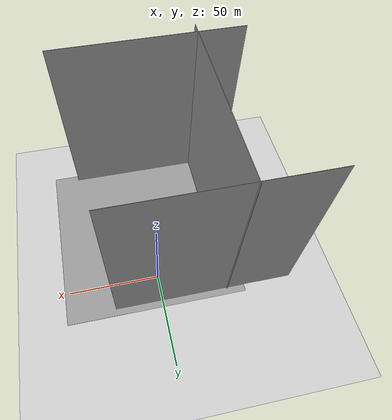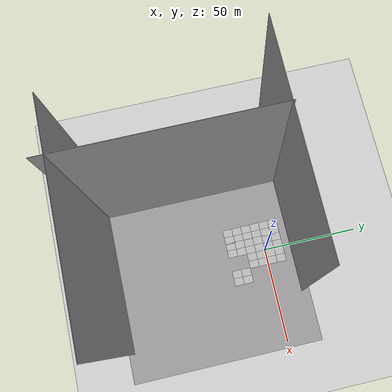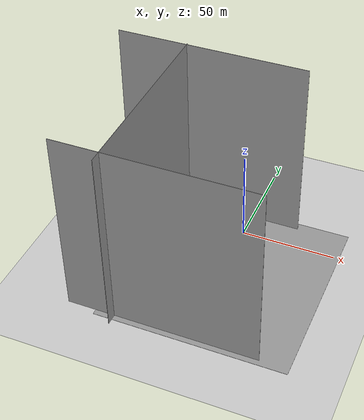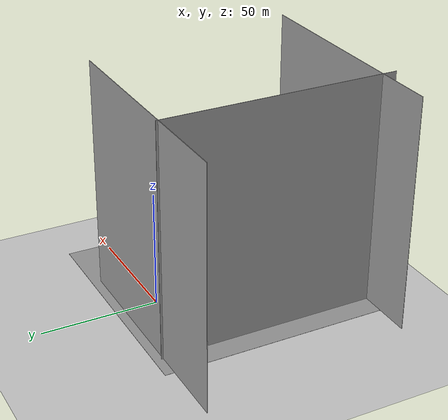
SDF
<sdf version="1.4">
 <world name="default">
  <model name="ground_plane">
   <static>1</static>
   <link name="link">
    <collision name="collision">
     <geometry><plane><normal>0 0 1</normal><size>100 100</size></plane></geometry>
     <surface><friction><ode><mu>100</mu><mu2>50</mu2></ode></friction></surface>
    </collision>
    <visual name="visual">
     <cast_shadows>0</cast_shadows>
     <geometry><plane><normal>0 0 1</normal><size>100 100</size></plane></geometry>
     <material>
      <script><uri>file://media/materials/scripts/gazebo.material</uri><name>Gazebo/Grey</name></script>
     </material>
    </visual>
    <velocity_decay><linear>0</linear><angular>0</angular></velocity_decay>
   </link>
   <pose>17 -17 0 0 -0 0</pose>
  </model>
  <model name="mud_box_0">
   <static>1</static>
   <link name="link">
    <collision name="collision"><geometry><box><size>8 10 0.2</size></box></geometry></collision>
    <visual name="visual_1">
     <pose>-2 2.5 0 0 -0 0</pose>
     <cast_shadows>0</cast_shadows>
     <geometry><box><size>4 5 0.2</size></box></geometry>
     <material>
      <script>
       <uri>model://mud_box/materials/scripts</uri>
       <uri>model://mud_box/materials/textures</uri>
       <name>vrc/mud</name>
      </script>
     </material>
    </visual>
    <visual name="visual_2">
     <pose>2 2.5 0 0 -0 0</pose>
     <cast_shadows>0</cast_shadows>
     <geometry><box><size>4 5 0.2</size></box></geometry>
     <material>
      <script>
       <uri>model://mud_box/materials/scripts</uri>
       <uri>model://mud_box/materials/textures</uri>
       <name>vrc/mud</name>
      </script>
     </material>
    </visual>
    <visual name="visual_3">
     <pose>2 -2.5 0 0 -0 0</pose>
     <cast_shadows>0</cast_shadows>
     <geometry><box><size>4 5 0.2</size></box></geometry>
     <material>
      <script>
       <uri>model://mud_box/materials/scripts</uri>
       <uri>model://mud_box/materials/textures</uri>
       <name>vrc/mud</name>
      </script>
     </material>
    </visual>
    <visual name="visual_4">
     <pose>-2 -2.5 0 0 -0 0</pose>
     <cast_shadows>0</cast_shadows>
     <geometry><box><size>4 5 0.2</size></box></geometry>
     <material>
      <script>
       <uri>model://mud_box/materials/scripts</uri>
       <uri>model://mud_box/materials/textures</uri>
       <name>vrc/mud</name>
      </script>
     </material>
    </visual>
    <velocity_decay><linear>0</linear><angular>0</angular></velocity_decay>
   </link>
   <pose>4 5 0 0 -0 0</pose>
  </model>
  <model name="mud_box_1">
   <static>1</static>
   <link name="link">
    <collision name="collision"><geometry><box><size>8 10 0.2</size></box></geometry></collision>
    <visual name="visual_1">
     <pose>-2 2.5 0 0 -0 0</pose>
     <cast_shadows>0</cast_shadows>
     <geometry><box><size>4 5 0.2</size></box></geometry>
     <material>
      <script>
       <uri>model://mud_box/materials/scripts</uri>
       <uri>model://mud_box/materials/textures</uri>
       <name>vrc/mud</name>
      </script>
     </material>
    </visual>
    <visual name="visual_2">
     <pose>2 2.5 0 0 -0 0</pose>
     <cast_shadows>0</cast_shadows>
     <geometry><box><size>4 5 0.2</size></box></geometry>
     <material>
      <script>
       <uri>model://mud_box/materials/scripts</uri>
       <uri>model://mud_box/materials/textures</uri>
       <name>vrc/mud</name>
      </script>
     </material>
    </visual>
    <visual name="visual_3">
     <pose>2 -2.5 0 0 -0 0</pose>
     <cast_shadows>0</cast_shadows>
     <geometry><box><size>4 5 0.2</size></box></geometry>
     <material>
      <script>
       <uri>model://mud_box/materials/scripts</uri>
       <uri>model://mud_box/materials/textures</uri>
       <name>vrc/mud</name>
      </script>
     </material>
    </visual>
    <visual name="visual_4">
     <pose>-2 -2.5 0 0 -0 0</pose>
     <cast_shadows>0</cast_shadows>
     <geometry><box><size>4 5 0.2</size></box></geometry>
     <material>
      <script>
       <uri>model://mud_box/materials/scripts</uri>
       <uri>model://mud_box/materials/textures</uri>
       <name>vrc/mud</name>
      </script>
     </material>
    </visual>
    <velocity_decay><linear>0</linear><angular>0</angular></velocity_decay>
   </link>
   <pose>-4 -5 0 0 -0 0</pose>
  </model>
  <model name="mud_box_2">
   <static>1</static>
   <link name="link">
    <collision name="collision"><geometry><box><size>8 10 0.2</size></box></geometry></collision>
    <visual name="visual_1">
     <pose>-2 2.5 0 0 -0 0</pose>
     <cast_shadows>0</cast_shadows>
     <geometry><box><size>4 5 0.2</size></box></geometry>
     <material>
      <script>
       <uri>model://mud_box/materials/scripts</uri>
       <uri>model://mud_box/materials/textures</uri>
       <name>vrc/mud</name>
      </script>
     </material>
    </visual>
    <visual name="visual_2">
     <pose>2 2.5 0 0 -0 0</pose>
     <cast_shadows>0</cast_shadows>
     <geometry><box><size>4 5 0.2</size></box></geometry>
     <material>
      <script>
       <uri>model://mud_box/materials/scripts</uri>
       <uri>model://mud_box/materials/textures</uri>
       <name>vrc/mud</name>
      </script>
     </material>
    </visual>
    <visual name="visual_3">
     <pose>2 -2.5 0 0 -0 0</pose>
     <cast_shadows>0</cast_shadows>
     <geometry><box><size>4 5 0.2</size></box></geometry>
     <material>
      <script>
       <uri>model://mud_box/materials/scripts</uri>
       <uri>model://mud_box/materials/textures</uri>
       <name>vrc/mud</name>
      </script>
     </material>
    </visual>
    <visual name="visual_4">
     <pose>-2 -2.5 0 0 -0 0</pose>
     <cast_shadows>0</cast_shadows>
     <geometry><box><size>4 5 0.2</size></box></geometry>
     <material>
      <script>
       <uri>model://mud_box/materials/scripts</uri>
       <uri>model://mud_box/materials/textures</uri>
       <name>vrc/mud</name>
      </script>
     </material>
    </visual>
    <velocity_decay><linear>0</linear><angular>0</angular></velocity_decay>
   </link>
   <pose>4 -5 0 0 -0 0</pose>
  </model>
  <model name="mud_box_4">
   <static>1</static>
   <link name="link">
    <collision name="collision"><geometry><box><size>8 10 0.2</size></box></geometry></collision>
    <visual name="visual_1">
     <pose>-2 2.5 0 0 -0 0</pose>
     <cast_shadows>0</cast_shadows>
     <geometry><box><size>4 5 0.2</size></box></geometry>
     <material>
      <script>
       <uri>model://mud_box/materials/scripts</uri>
       <uri>model://mud_box/materials/textures</uri>
       <name>vrc/mud</name>
      </script>
     </material>
    </visual>
    <visual name="visual_2">
     <pose>2 2.5 0 0 -0 0</pose>
     <cast_shadows>0</cast_shadows>
     <geometry><box><size>4 5 0.2</size></box></geometry>
     <material>
      <script>
       <uri>model://mud_box/materials/scripts</uri>
       <uri>model://mud_box/materials/textures</uri>
       <name>vrc/mud</name>
      </script>
     </material>
    </visual>
    <visual name="visual_3">
     <pose>2 -2.5 0 0 -0 0</pose>
     <cast_shadows>0</cast_shadows>
     <geometry><box><size>4 5 0.2</size></box></geometry>
     <material>
      <script>
       <uri>model://mud_box/materials/scripts</uri>
       <uri>model://mud_box/materials/textures</uri>
       <name>vrc/mud</name>
      </script>
     </material>
    </visual>
    <visual name="visual_4">
     <pose>-2 -2.5 0 0 -0 0</pose>
     <cast_shadows>0</cast_shadows>
     <geometry><box><size>4 5 0.2</size></box></geometry>
     <material>
      <script>
       <uri>model://mud_box/materials/scripts</uri>
       <uri>model://mud_box/materials/textures</uri>
       <name>vrc/mud</name>
      </script>
     </material>
    </visual>
    <velocity_decay><linear>0</linear><angular>0</angular></velocity_decay>
   </link>
   <pose>-4 5 0 0 -0 0</pose>
  </model>
  <model name="mud_box_5">
   <static>1</static>
   <link name="link">
    <collision name="collision"><geometry><box><size>8 10 0.2</size></box></geometry></collision>
    <visual name="visual_1">
     <pose>-2 2.5 0 0 -0 0</pose>
     <cast_shadows>0</cast_shadows>
     <geometry><box><size>4 5 0.2</size></box></geometry>
     <material>
      <script>
       <uri>model://mud_box/materials/scripts</uri>
       <uri>model://mud_box/materials/textures</uri>
       <name>vrc/mud</name>
      </script>
     </material>
    </visual>
    <visual name="visual_2">
     <pose>2 2.5 0 0 -0 0</pose>
     <cast_shadows>0</cast_shadows>
     <geometry><box><size>4 5 0.2</size></box></geometry>
     <material>
      <script>
       <uri>model://mud_box/materials/scripts</uri>
       <uri>model://mud_box/materials/textures</uri>
       <name>vrc/mud</name>
      </script>
     </material>
    </visual>
    <visual name="visual_3">
     <pose>2 -2.5 0 0 -0 0</pose>
     <cast_shadows>0</cast_shadows>
     <geometry><box><size>4 5 0.2</size></box></geometry>
     <material>
      <script>
       <uri>model://mud_box/materials/scripts</uri>
       <uri>model://mud_box/materials/textures</uri>
       <name>vrc/mud</name>
      </script>
     </material>
    </visual>
    <visual name="visual_4">
     <pose>-2 -2.5 0 0 -0 0</pose>
     <cast_shadows>0</cast_shadows>
     <geometry><box><size>4 5 0.2</size></box></geometry>
     <material>
      <script>
       <uri>model://mud_box/materials/scripts</uri>
       <uri>model://mud_box/materials/textures</uri>
       <name>vrc/mud</name>
      </script>
     </material>
    </visual>
    <velocity_decay><linear>0</linear><angular>0</angular></velocity_decay>
   </link>
   <pose>-11.5813 5 0 0 -0 0</pose>
  </model>
  <model name="mud_box_6">
   <static>1</static>
   <link name="link">
    <collision name="collision"><geometry><box><size>8 10 0.2</size></box></geometry></collision>
    <visual name="visual_1">
     <pose>-2 2.5 0 0 -0 0</pose>
     <cast_shadows>0</cast_shadows>
     <geometry><box><size>4 5 0.2</size></box></geometry>
     <material>
      <script>
       <uri>model://mud_box/materials/scripts</uri>
       <uri>model://mud_box/materials/textures</uri>
       <name>vrc/mud</name>
      </script>
     </material>
    </visual>
    <visual name="visual_2">
     <pose>2 2.5 0 0 -0 0</pose>
     <cast_shadows>0</cast_shadows>
     <geometry><box><size>4 5 0.2</size></box></geometry>
     <material>
      <script>
       <uri>model://mud_box/materials/scripts</uri>
       <uri>model://mud_box/materials/textures</uri>
       <name>vrc/mud</name>
      </script>
     </material>
    </visual>
    <visual name="visual_3">
     <pose>2 -2.5 0 0 -0 0</pose>
     <cast_shadows>0</cast_shadows>
     <geometry><box><size>4 5 0.2</size></box></geometry>
     <material>
      <script>
       <uri>model://mud_box/materials/scripts</uri>
       <uri>model://mud_box/materials/textures</uri>
       <name>vrc/mud</name>
      </script>
     </material>
    </visual>
    <visual name="visual_4">
     <pose>-2 -2.5 0 0 -0 0</pose>
     <cast_shadows>0</cast_shadows>
     <geometry><box><size>4 5 0.2</size></box></geometry>
     <material>
      <script>
       <uri>model://mud_box/materials/scripts</uri>
       <uri>model://mud_box/materials/textures</uri>
       <name>vrc/mud</name>
      </script>
     </material>
    </visual>
    <velocity_decay><linear>0</linear><angular>0</angular></velocity_decay>
   </link>
   <pose>-11.5408 -5 0 0 -0 0</pose>
  </model>
  <model name="mud_box_7">
   <static>1</static>
   <link name="link">
    <collision name="collision"><geometry><box><size>8 10 0.2</size></box></geometry></collision>
    <visual name="visual_1">
     <pose>-2 2.5 0 0 -0 0</pose>
     <cast_shadows>0</cast_shadows>
     <geometry><box><size>4 5 0.2</size></box></geometry>
     <material>
      <script>
       <uri>model://mud_box/materials/scripts</uri>
       <uri>model://mud_box/materials/textures</uri>
       <name>vrc/mud</name>
      </script>
     </material>
    </visual>
    <visual name="visual_2">
     <pose>2 2.5 0 0 -0 0</pose>
     <cast_shadows>0</cast_shadows>
     <geometry><box><size>4 5 0.2</size></box></geometry>
     <material>
      <script>
       <uri>model://mud_box/materials/scripts</uri>
       <uri>model://mud_box/materials/textures</uri>
       <name>vrc/mud</name>
      </script>
     </material>
    </visual>
    <visual name="visual_3">
     <pose>2 -2.5 0 0 -0 0</pose>
     <cast_shadows>0</cast_shadows>
     <geometry><box><size>4 5 0.2</size></box></geometry>
     <material>
      <script>
       <uri>model://mud_box/materials/scripts</uri>
       <uri>model://mud_box/materials/textures</uri>
       <name>vrc/mud</name>
      </script>
     </material>
    </visual>
    <visual name="visual_4">
     <pose>-2 -2.5 0 0 -0 0</pose>
     <cast_shadows>0</cast_shadows>
     <geometry><box><size>4 5 0.2</size></box></geometry>
     <material>
      <script>
       <uri>model://mud_box/materials/scripts</uri>
       <uri>model://mud_box/materials/textures</uri>
       <name>vrc/mud</name>
      </script>
     </material>
    </visual>
    <velocity_decay><linear>0</linear><angular>0</angular></velocity_decay>
   </link>
   <pose>-11.4023 -15 0 0 -0 0</pose>
  </model>
  <model name="mud_box_8">
   <static>1</static>
   <link name="link">
    <collision name="collision"><geometry><box><size>8 10 0.2</size></box></geometry></collision>
    <visual name="visual_1">
     <pose>-2 2.5 0 0 -0 0</pose>
     <cast_shadows>0</cast_shadows>
     <geometry><box><size>4 5 0.2</size></box></geometry>
     <material>
      <script>
       <uri>model://mud_box/materials/scripts</uri>
       <uri>model://mud_box/materials/textures</uri>
       <name>vrc/mud</name>
      </script>
     </material>
    </visual>
    <visual name="visual_2">
     <pose>2 2.5 0 0 -0 0</pose>
     <cast_shadows>0</cast_shadows>
     <geometry><box><size>4 5 0.2</size></box></geometry>
     <material>
      <script>
       <uri>model://mud_box/materials/scripts</uri>
       <uri>model://mud_box/materials/textures</uri>
       <name>vrc/mud</name>
      </script>
     </material>
    </visual>
    <visual name="visual_3">
     <pose>2 -2.5 0 0 -0 0</pose>
     <cast_shadows>0</cast_shadows>
     <geometry><box><size>4 5 0.2</size></box></geometry>
     <material>
      <script>
       <uri>model://mud_box/materials/scripts</uri>
       <uri>model://mud_box/materials/textures</uri>
       <name>vrc/mud</name>
      </script>
     </material>
    </visual>
    <visual name="visual_4">
     <pose>-2 -2.5 0 0 -0 0</pose>
     <cast_shadows>0</cast_shadows>
     <geometry><box><size>4 5 0.2</size></box></geometry>
     <material>
      <script>
       <uri>model://mud_box/materials/scripts</uri>
       <uri>model://mud_box/materials/textures</uri>
       <name>vrc/mud</name>
      </script>
     </material>
    </visual>
    <velocity_decay><linear>0</linear><angular>0</angular></velocity_decay>
   </link>
   <pose>-4 -15 0 0 -0 0</pose>
  </model>
  <model name="mud_box_16">
   <static>1</static>
   <link name="link">
    <collision name="collision"><geometry><box><size>8 10 0.2</size></box></geometry></collision>
    <visual name="visual_1">
     <pose>-2 2.5 0 0 -0 0</pose>
     <cast_shadows>0</cast_shadows>
     <geometry><box><size>4 5 0.2</size></box></geometry>
     <material>
      <script>
       <uri>model://mud_box/materials/scripts</uri>
       <uri>model://mud_box/materials/textures</uri>
       <name>vrc/mud</name>
      </script>
     </material>
    </visual>
    <visual name="visual_2">
     <pose>2 2.5 0 0 -0 0</pose>
     <cast_shadows>0</cast_shadows>
     <geometry><box><size>4 5 0.2</size></box></geometry>
     <material>
      <script>
       <uri>model://mud_box/materials/scripts</uri>
       <uri>model://mud_box/materials/textures</uri>
       <name>vrc/mud</name>
      </script>
     </material>
    </visual>
    <visual name="visual_3">
     <pose>2 -2.5 0 0 -0 0</pose>
     <cast_shadows>0</cast_shadows>
     <geometry><box><size>4 5 0.2</size></box></geometry>
     <material>
      <script>
       <uri>model://mud_box/materials/scripts</uri>
       <uri>model://mud_box/materials/textures</uri>
       <name>vrc/mud</name>
      </script>
     </material>
    </visual>
    <visual name="visual_4">
     <pose>-2 -2.5 0 0 -0 0</pose>
     <cast_shadows>0</cast_shadows>
     <geometry><box><size>4 5 0.2</size></box></geometry>
     <material>
      <script>
       <uri>model://mud_box/materials/scripts</uri>
       <uri>model://mud_box/materials/textures</uri>
       <name>vrc/mud</name>
      </script>
     </material>
    </visual>
    <velocity_decay><linear>0</linear><angular>0</angular></velocity_decay>
   </link>
   <pose>11.4583 -15 0 0 -0 0</pose>
  </model>
  <model name="grey_wall_3_0">
   <static>1</static>
   <link name="link">
    <pose>0 0 50 0 -0 0</pose>
    <collision name="collision"><geometry><box><size>0.2 100 100</size></box></geometry></collision>
    <visual name="visual">
     <cast_shadows>0</cast_shadows>
     <geometry><box><size>0.2 100 100</size></box></geometry>
     <material>
      <script>
       <uri>model://grey_wall/materials/scripts</uri>
       <uri>model://grey_wall/materials/textures</uri>
       <name>vrc/grey_wall</name>
      </script>
     </material>
    </visual>
    <velocity_decay><linear>0</linear><angular>0</angular></velocity_decay>
   </link>
   <pose>-37 -35 0 0 -0 0</pose>
  </model>
  <model name="grey_wall_2_0">
   <static>1</static>
   <link name="link">
    <pose>0 0 50 0 -0 0</pose>
    <collision name="collision"><geometry><box><size>100 0.2 100</size></box></geometry></collision>
    <visual name="visual">
     <cast_shadows>0</cast_shadows>
     <geometry><box><size>100 0.2 100</size></box></geometry>
     <material>
      <script>
       <uri>model://grey_wall/materials/scripts</uri>
       <uri>model://grey_wall/materials/textures</uri>
       <name>vrc/grey_wall</name>
      </script>
     </material>
    </visual>
    <velocity_decay><linear>0</linear><angular>0</angular></velocity_decay>
   </link>
   <pose>-12 -79 0 0 -0 0</pose>
  </model>
  <model name="grey_wall_2_2">
   <static>1</static>
   <link name="link">
    <pose>0 0 50 0 -0 0</pose>
    <collision name="collision"><geometry><box><size>100 0.2 100</size></box></geometry></collision>
    <visual name="visual">
     <cast_shadows>0</cast_shadows>
     <geometry><box><size>100 0.2 100</size></box></geometry>
     <material>
      <script>
       <uri>model://grey_wall/materials/scripts</uri>
       <uri>model://grey_wall/materials/textures</uri>
       <name>vrc/grey_wall</name>
      </script>
     </material>
    </visual>
    <velocity_decay><linear>0</linear><angular>0</angular></velocity_decay>
   </link>
   <pose>-24 14 0 0 -0 0</pose>
  </model>
  <model name="ground_plane_1">
   <static>1</static>
   <link name="link">
    <collision name="collision">
     <geometry><plane><normal>0 0 1</normal><size>100 100</size></plane></geometry>
     <surface><friction><ode><mu>100</mu><mu2>50</mu2></ode></friction></surface>
    </collision>
    <visual name="visual">
     <cast_shadows>0</cast_shadows>
     <geometry><plane><normal>0 0 1</normal><size>100 100</size></plane></geometry>
     <material>
      <script><uri>file://media/materials/scripts/gazebo.material</uri><name>Gazebo/Grey</name></script>
     </material>
    </visual>
    <velocity_decay><linear>0</linear><angular>0</angular></velocity_decay>
   </link>
   <pose>3 -32 0 0 -0 0</pose>
  </model>
 </world>
</sdf>
